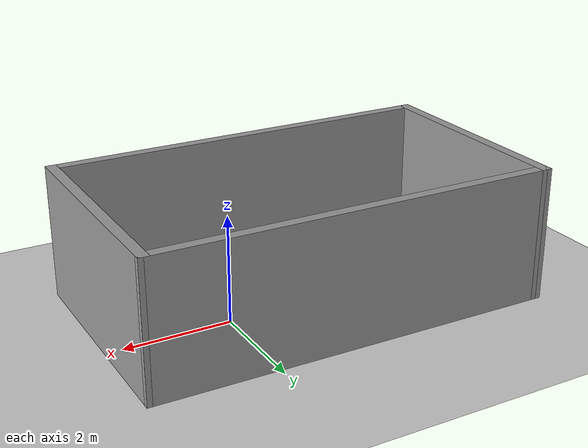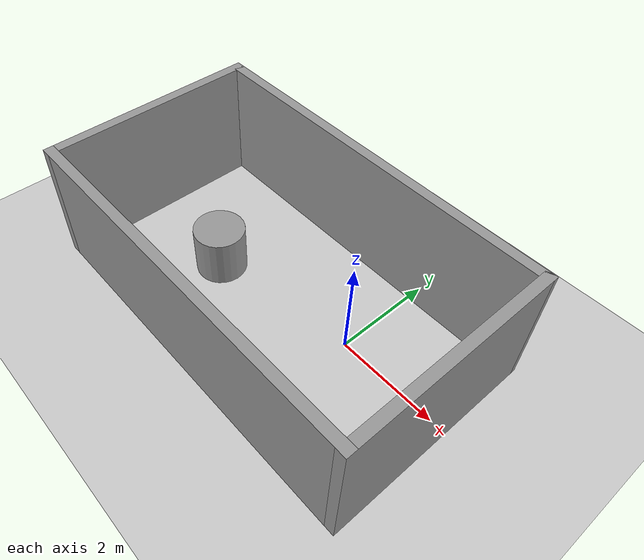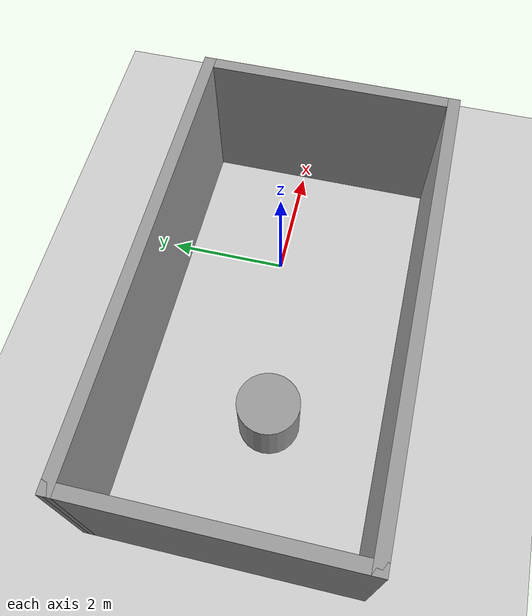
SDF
<sdf version="1.4">
 <world name="default">
  <light name="sun" type="directional">
   <pose>0 0 10 0 -0 0</pose>
   <diffuse>0.8 0.8 0.8 1</diffuse>
   <specular>0.2 0.2 0.2 1</specular>
   <attenuation>
    <range>1000</range>
    <constant>0.9</constant>
    <linear>0.01</linear>
    <quadratic>0.001</quadratic>
   </attenuation>
   <direction>-0.5 0.1 -0.9</direction>
  </light>
  <model name="ground_plane">
   <static>1</static>
   <link name="link">
    <collision name="collision">
     <geometry><plane><normal>0 0 1</normal><size>100 100</size></plane></geometry>
     <surface><friction><ode><mu>100</mu><mu2>50</mu2></ode></friction></surface>
    </collision>
    <visual name="visual">
     <cast_shadows>0</cast_shadows>
     <geometry><plane><normal>0 0 1</normal><size>100 100</size></plane></geometry>
     <material>
      <script><uri>file://media/materials/scripts/gazebo.material</uri><name>Gazebo/Grey</name></script>
     </material>
    </visual>
    <velocity_decay><linear>0</linear><angular>0</angular></velocity_decay>
   </link>
  </model>
  <physics type="ode">
   <max_step_size>0.001</max_step_size>
   <real_time_factor>1</real_time_factor>
   <real_time_update_rate>1000</real_time_update_rate>
   <gravity>0 0 -9.8</gravity>
  </physics>
  <scene><ambient>0.4 0.4 0.4 1</ambient><background>0.7 0.7 0.7 1</background><shadows>1</shadows></scene>
  <spherical_coordinates>
   <surface_model>EARTH_WGS84</surface_model>
   <latitude_deg>0</latitude_deg>
   <longitude_deg>0</longitude_deg>
   <elevation>0</elevation>
   <heading_deg>0</heading_deg>
  </spherical_coordinates>
  <model name="world1">
   <link name="Wall_2">
    <collision name="Wall_2_Collision">
     <geometry><box><size>4.40374 0.2 2.5</size></box></geometry>
     <pose>0 0 1.25 0 -0 0</pose>
    </collision>
    <visual name="Wall_2_Visual">
     <pose>0 0 1.25 0 -0 0</pose>
     <geometry><box><size>4.40374 0.2 2.5</size></box></geometry>
     <material>
      <script><uri>file://media/materials/scripts/gazebo.material</uri><name>Gazebo/Grey</name></script>
     </material>
    </visual>
    <velocity_decay><linear>0</linear><angular>0</angular></velocity_decay>
    <pose>-5.23392 -0.301945 0 0 0 -1.5708</pose>
   </link>
   <link name="Wall_3">
    <collision name="Wall_3_Collision">
     <geometry><box><size>7.64202 0.2 2.5</size></box></geometry>
     <pose>0 0 1.25 0 -0 0</pose>
    </collision>
    <visual name="Wall_3_Visual">
     <pose>0 0 1.25 0 -0 0</pose>
     <geometry><box><size>7.64202 0.2 2.5</size></box></geometry>
     <material>
      <script><uri>file://media/materials/scripts/gazebo.material</uri><name>Gazebo/Grey</name></script>
     </material>
    </visual>
    <velocity_decay><linear>0</linear><angular>0</angular></velocity_decay>
    <pose>-1.51291 -2.40381 0 0 -0 0</pose>
   </link>
   <link name="Wall_4">
    <collision name="Wall_4_Collision">
     <geometry><box><size>4.36351 0.2 2.5</size></box></geometry>
     <pose>0 0 1.25 0 -0 0</pose>
    </collision>
    <visual name="Wall_4_Visual">
     <pose>0 0 1.25 0 -0 0</pose>
     <geometry><box><size>4.36351 0.2 2.5</size></box></geometry>
     <material>
      <script><uri>file://media/materials/scripts/gazebo.material</uri><name>Gazebo/Grey</name></script>
     </material>
    </visual>
    <velocity_decay><linear>0</linear><angular>0</angular></velocity_decay>
    <pose>2.2081 -0.322059 0 0 -0 1.5708</pose>
   </link>
   <link name="Wall_5">
    <collision name="Wall_5_Collision">
     <geometry><box><size>7.64213 0.2 2.5</size></box></geometry>
     <pose>0 0 1.25 0 -0 0</pose>
    </collision>
    <visual name="Wall_5_Visual">
     <pose>0 0 1.25 0 -0 0</pose>
     <geometry><box><size>7.64213 0.2 2.5</size></box></geometry>
     <material>
      <script><uri>file://media/materials/scripts/gazebo.material</uri><name>Gazebo/Grey</name></script>
     </material>
    </visual>
    <velocity_decay><linear>0</linear><angular>0</angular></velocity_decay>
    <pose>-1.51291 1.77981 0 0 -0 3.13619</pose>
   </link>
   <static>1</static>
  </model>
  <model name="unit_cylinder_1">
   <pose>-3 -0.489268 0.499992 0 -0 0</pose>
   <link name="link">
    <inertial>
     <mass>1</mass>
     <inertia><ixx>1</ixx><ixy>0</ixy><ixz>0</ixz><iyy>1</iyy><iyz>0</iyz><izz>1</izz></inertia>
    </inertial>
    <collision name="collision">
     <geometry><cylinder><radius>0.5</radius><length>1</length></cylinder></geometry>
    </collision>
    <visual name="visual">
     <geometry><cylinder><radius>0.5</radius><length>1</length></cylinder></geometry>
     <material>
      <script><uri>file://media/materials/scripts/gazebo.material</uri><name>Gazebo/Grey</name></script>
     </material>
    </visual>
    <velocity_decay><linear>0</linear><angular>0</angular></velocity_decay>
   </link>
   <static>0</static>
  </model>
 </world>
</sdf>
